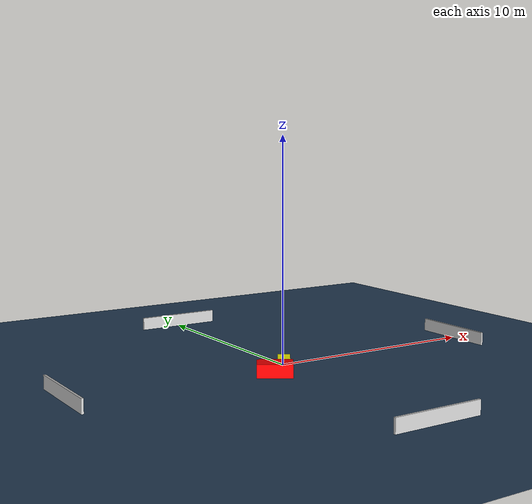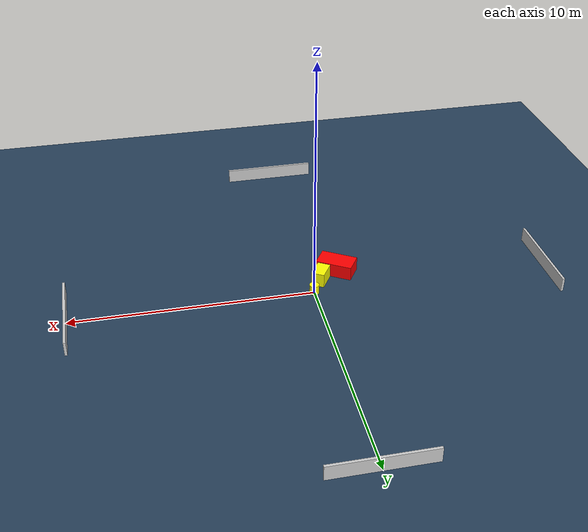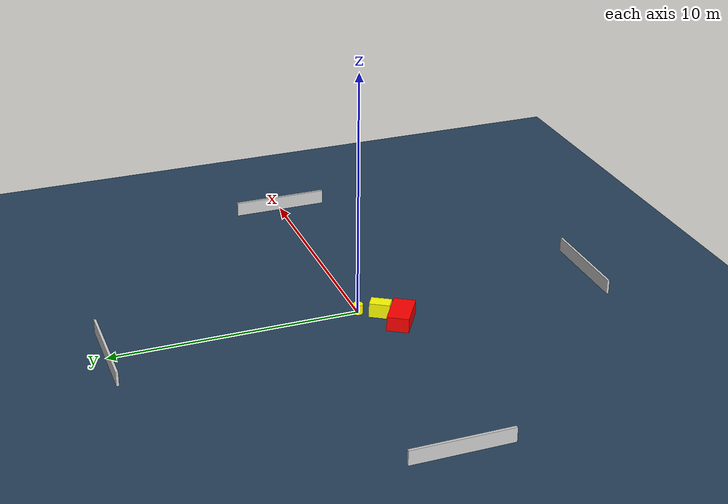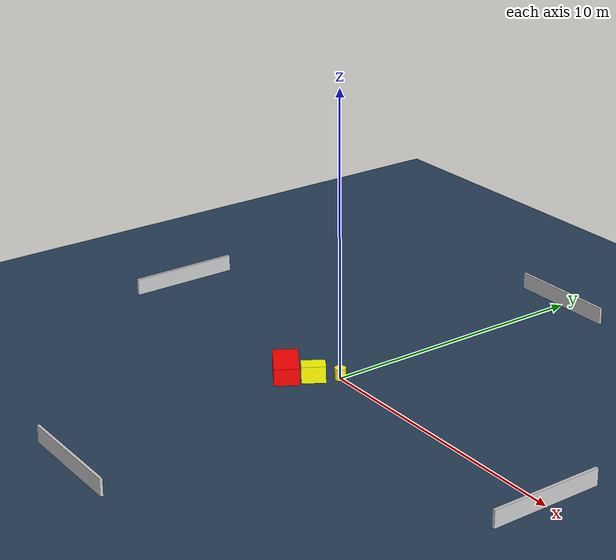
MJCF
<?xml version="1.0" ?>
<mujoco model="generated_environment">
  <option timestep="0.01" integrator="RK4" cone="elliptic"/>
  <default>
    <geom density="1"/>
  </default>
  <asset>
    <texture builtin="gradient" height="3072" name="skybox" rgb1="0.3 0.5 0.7" rgb2="0 0 0" type="skybox" width="512"/>
    <texture builtin="checker" height="300" name="groundplane" rgb1="0.2 0.3 0.4" rgb2="0.1 0.2 0.3" type="2d" width="300"/>
    <material name="groundplane" reflectance="0.2" texrepeat="5 5" texture="groundplane"/>
  </asset>
  <worldbody>
    <light dir="0 0 -1" directional="true" pos="0 0 1.5"/>
    <geom condim="3" friction="0.5 0.005 0.001" material="groundplane" name="floor" pos="0 0 0" size="0 0 0.05" type="plane"/>
    <body name="walls">
      <geom name="wall_1" condim="4" pos="-10.0 0.0 0.3" rgba="0.800000011920929 0.800000011920929 0.800000011920929 1.0" size="0.05 2.0 0.3" type="box"/>
      <geom name="wall_2" condim="4" pos="10.0 0.0 0.3" rgba="0.800000011920929 0.800000011920929 0.800000011920929 1.0" size="0.05 2.0 0.3" type="box"/>
      <geom name="wall_3" condim="4" pos="0.0 -10.0 0.3" rgba="0.800000011920929 0.800000011920929 0.800000011920929 1.0" size="2.0 0.05 0.3" type="box"/>
      <geom name="wall_4" condim="4" pos="0.0 10.0 0.3" rgba="0.800000011920929 0.800000011920929 0.800000011920929 1.0" size="2.0 0.05 0.3" type="box"/>
    </body>
    <body name="robot">
      <joint name="joint_x" type="slide" pos="0 0 0" axis="1 0 0"/>
      <joint name="joint_y" type="slide" pos="0 0 0" axis="0 1 0"/>
      <geom name="robot" type="cylinder" pos="0.0 0.0 0.2" size="0.2 0.2 0.0" mass="5.0" friction="1.0 0.005 0.0001" condim="4" rgba="1.0 1.0 0.0 1.0"/>
    </body>
    <body name="obstacle_1_movable">
      <geom name="obstacle_1_movable" condim="4" pos="-0.46046281896953795 -0.7710308084916321 0.3" euler="0 0 148.19383212276907" friction="0.0 0.005 0.001" rgba="1.0 1.0 0.0 1.0" size="0.26939662941475584 0.41293076867405054 0.3" type="box" mass="0.1"/>
      <joint type="free"/>
    </body>
    <body name="obstacle_2_static">
      <geom name="obstacle_2_static" condim="4" pos="-1.262617574417853 -1.3217054941972746 0.3" euler="0 0 57.720101479468426" friction="0.0 0.005 0.001" rgba="1.0 0.0 0.0 1.0" size="0.43539803612026534 0.767992950015115 0.3" type="box"/>
    </body>
  </worldbody>
  <actuator>
    <motor name="actuator_x" joint="joint_x" gear="1" ctrlrange="-1 1"/>
    <motor name="actuator_y" joint="joint_y" gear="1" ctrlrange="-1 1"/>
  </actuator>
</mujoco>
